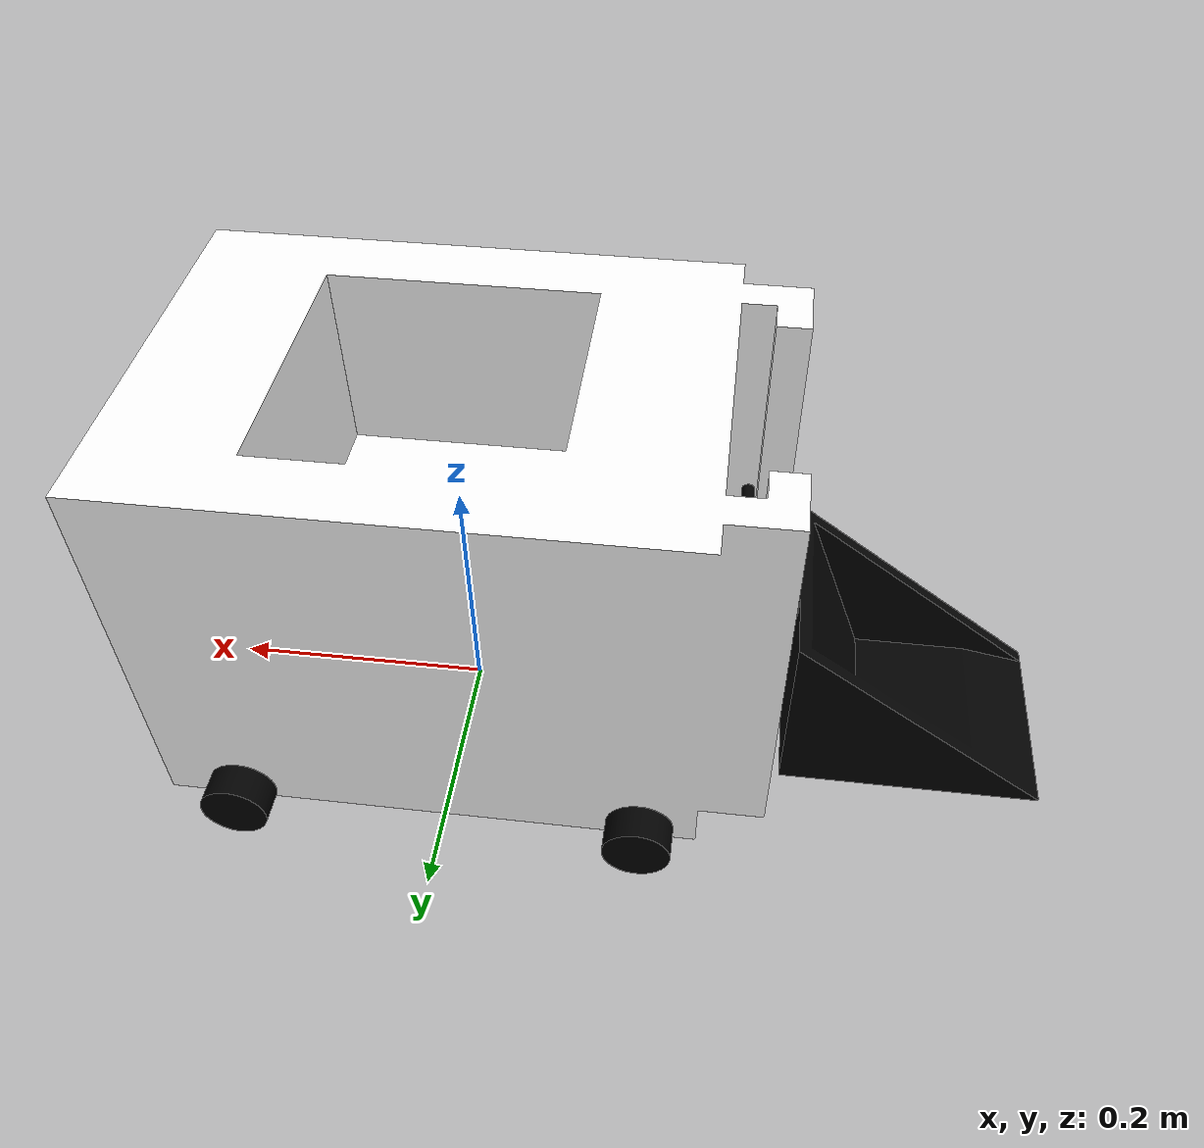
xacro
<?xml version="1.0"?>
<robot xmlns:xacro="http://www.ros.org/wiki/xacro"  name="robot">

    <xacro:include filename="robot_core.xacro" />
    <xacro:include filename="gazebo_control.xacro" />
    <xacro:include filename="inertial_macros.xacro" />
    <xacro:include filename="robot_control.urdf.xacro" />
    <xacro:include filename="sup_grip_transmission.xacro" />
    <xacro:include filename="gripper_transmission.xacro" />

    <ros2_control name = "GazeboSimSystem" type= "system">
        <hardware>
            <plugin>gazebo_ros2_control/GazeboSystem</plugin>
        </hardware>
        <xacro:sup_grip_transmission/>
        <xacro:gripper_transmission/>
    </ros2_control>
    <xacro:robot_controller/>

</robot>

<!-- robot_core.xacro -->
<robot xmlns:xacro="http://www.ros.org/wiki/xacro" >
    <xacro:include filename="inertial_macros.xacro" />
    <material name="white">
        <color rgba="1 1 1 1" />
    </material>

    <material name="orange">
        <color rgba="1 0.3 0.1 1"/>
    </material>

    <material name="blue">
        <color rgba="0.2 0.2 1 1"/>
    </material>

    <material name="black">
        <color rgba="0 0 0 1"/>
    </material>

    <material name="red">
        <color rgba="1 0 0 1"/>
    </material>

    <!-- BASE LINK -->

    <link name="base_link">

    </link>

    <joint name="chassis_joint" type="fixed">
        <parent link="base_link"/>
        <child link="chassis"/>
        <origin xyz="0 0 0"/>
        <dynamics damping="1" friction="1"/>
    </joint>

    <link name="chassis">
        <visual>
            <origin xyz="0 0 0.15" rpy="0 0 0"/>
            <geometry>
                <mesh filename="file:///home/white/aufinal_ws/src/articubot_one/description/Body.dae"/>
            </geometry>
            <material name="white"/>
        </visual>
        <collision>
            <origin xyz="0 0 0.15" rpy="0 0 0"/>
            <geometry>
                <mesh filename="file:///home/white/aufinal_ws/src/articubot_one/description/Body.dae"/>
            </geometry>
        </collision>
        <xacro:inertial_box mass="5.0" x="0.2" y="0.2" z="0.25">
            <origin xyz="0 0 0.125" rpy="0 0 0"/>
        </xacro:inertial_box>
    </link>

    <gazebo reference="chassis">
        <material>Gazebo/Blue</material>
        <mu1 value="0.1"/>
        <mu2 value="0.1"/>
    </gazebo>

    <!-- LEFT WHEEL -->
    <!-- Front -->
    <joint name="left_front_wheel_joint" type="continuous">
        <parent link="chassis"/>
        <child link="left_front_wheel"/>
        <origin xyz="-0.125 -0.15 0.025" rpy="0 0 ${pi/2}"/>
        <axis xyz="-1 0 0"/>
        <dynamics damping="1" friction="1"/>
    </joint>

    <link name="left_front_wheel">
        <visual>
            <geometry>
                <mesh filename="file:///home/white/aufinal_ws/src/articubot_one/description/Wheel.dae"/>
            </geometry>
            <material name="black"/>
        </visual>
        <collision>
            <geometry>
                <mesh filename="file:///home/white/aufinal_ws/src/articubot_one/description/Wheel.dae"/>
            </geometry>
        </collision>
        <xacro:inertial_cylinder mass="0.1" length="0.05" radius="0.05">
            <origin xyz="0 0 0" rpy="0 0 0"/>
        </xacro:inertial_cylinder>
    </link>

    <gazebo reference="left_front_wheel">
        <material>Gazebo/Black</material>
        <mu1 value="0.1"/>
        <mu2 value="0.1"/>
    </gazebo>

    <!-- Back -->
    <joint name="left_back_wheel_joint" type="continuous">
        <parent link="chassis"/>
        <child link="left_back_wheel"/>
        <origin xyz="0.125 -0.15 0.025" rpy="0 0 ${pi/2}"/>
        <axis xyz="-1 0 0"/>
        <dynamics damping="1" friction="1"/>
    </joint>

    <link name="left_back_wheel">
        <visual>
            <geometry>
                <mesh filename="file:///home/white/aufinal_ws/src/articubot_one/description/Wheel.dae"/>
            </geometry>
            <material name="black"/>
        </visual>
        <collision>
            <geometry>
                <mesh filename="file:///home/white/aufinal_ws/src/articubot_one/description/Wheel.dae"/>
            </geometry>
        </collision>
        <xacro:inertial_cylinder mass="0.1" length="0.05" radius="0.05">
            <origin xyz="0 0 0" rpy="0 0 0"/>
        </xacro:inertial_cylinder>
    </link>

    <gazebo reference="left_back_wheel">
        <material>Gazebo/Black</material>
        <mu1 value="0.1"/>
        <mu2 value="0.1"/>
    </gazebo>

    <!-- RIGHT WHEEl -->
    <!-- Front -->
    <joint name="right_front_wheel_joint" type="continuous">
        <parent link="chassis"/>
        <child link="right_front_wheel"/>
        <origin xyz="-0.15 0.175 0.025" rpy="0 0 ${pi/2}"/>
        <axis xyz="-1 0 0"/>
        <dynamics damping="1" friction="1"/>
    </joint>

    <link name="right_front_wheel">
        <visual>
            <geometry>
                <mesh filename="file:///home/white/aufinal_ws/src/articubot_one/description/Wheel.dae"/>
            </geometry>
            <material name="black"/>
        </visual>
        <collision>
            <geometry>
                <mesh filename="file:///home/white/aufinal_ws/src/articubot_one/description/Wheel.dae"/>
            </geometry>
        </collision>
        <xacro:inertial_cylinder mass="0.1" length="0.05" radius="0.05">
            <origin xyz="0 0 0" rpy="0 0 0"/>
        </xacro:inertial_cylinder>
    </link>

    <gazebo reference="right_front_wheel">
        <material>Gazebo/Black</material>
        <mu1 value="0.1"/>
        <mu2 value="0.1"/>
    </gazebo>

    <!-- Back -->
    <joint name="right_back_wheel_joint" type="continuous">
        <parent link="chassis"/>
        <child link="right_back_wheel"/>
        <origin xyz="0.15 0.175 0.025" rpy="0 0 ${pi/2}"/>
        <axis xyz="-1 0 0"/>
        <dynamics damping="1" friction="1"/>
    </joint>

    <link name="right_back_wheel">
        <visual>
            <geometry>
                <mesh filename="file:///home/white/aufinal_ws/src/articubot_one/description/Wheel.dae"/>
            </geometry>
            <material name="black"/>
        </visual>
        <collision>
            <geometry>
                <mesh filename="file:///home/white/aufinal_ws/src/articubot_one/description/Wheel.dae"/>
            </geometry>
        </collision>
        <xacro:inertial_cylinder mass="0.1" length="0.05" radius="0.05">
            <origin xyz="0 0 0" rpy="0 0 0"/>
        </xacro:inertial_cylinder>
    </link>

    <gazebo reference="right_back_wheel">
        <material>Gazebo/Black</material>
        <mu1 value="0.1"/>
        <mu2 value="0.1"/>
    </gazebo>

    <!-- Sup -->
    <joint name="sup_grip_joint" type="prismatic">
        <parent link="chassis"/>
        <child link="sup_grip"/>
        <origin xyz="-0.21 0 0.14" rpy="0 0 0"/>
        <axis xyz="0 0 -1"/>
        <limit lower = "-0.17" upper = "0" effort = "100" velocity="3" />
        <dynamics damping="1" friction="1"/>
    </joint>

    <link name="sup_grip">
        <visual>
            <geometry>
                <mesh filename="file:///home/white/aufinal_ws/src/articubot_one/description/Sup.dae"/>
            </geometry>
            <material name="black"/>
        </visual>
        <collision>
            <geometry>
                <mesh filename="file:///home/white/aufinal_ws/src/articubot_one/description/Sup.dae"/>
            </geometry>
        </collision>
        <xacro:inertial_cylinder mass="0.1" length="0.02" radius="0.05">
            <origin xyz="-0.05 0 0" rpy="0 0 0"/>
        </xacro:inertial_cylinder>
    </link>

    <gazebo reference="sup_grip">
        <material>Gazebo/White</material>
        <mu1 value="0.1"/>
        <mu2 value="0.1"/>
    </gazebo>

    <!-- Gripper -->
    <joint name="gripper_joint" type="revolute">
        <parent link="sup_grip"/>
        <child link="gripper"/>
        <origin xyz="-0.0075 0 0" rpy="0 0 0"/>
        <axis xyz="0 1 0"/>
        <limit lower = "0" upper = "3.14" effort = "100" velocity="3" />
        <dynamics damping="1" friction="1"/>
    </joint>

    <link name="gripper">
        <visual>
            <geometry>
                <mesh filename="file:///home/white/aufinal_ws/src/articubot_one/description/Gripper.dae"/>
            </geometry>
            <material name="black"/>
        </visual>
        <collision>
            <geometry>
                <mesh filename="file:///home/white/aufinal_ws/src/articubot_one/description/Gripper.dae"/>
            </geometry>
        </collision>
        <xacro:inertial_cylinder mass="0.1" length="0.02" radius="0.05">
            <origin xyz="-0.1 0 -0.1" rpy="0 0 0"/>
        </xacro:inertial_cylinder>
    </link>

    <gazebo reference="gripper">
        <material>Gazebo/Black</material>
        <mu1 value="0.1"/>
        <mu2 value="0.1"/>
    </gazebo>

</robot>
